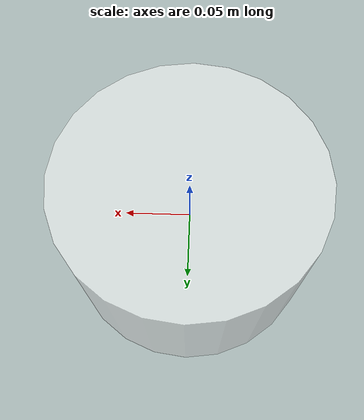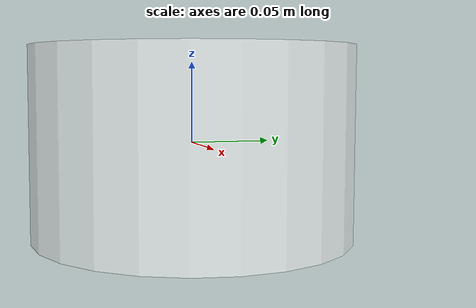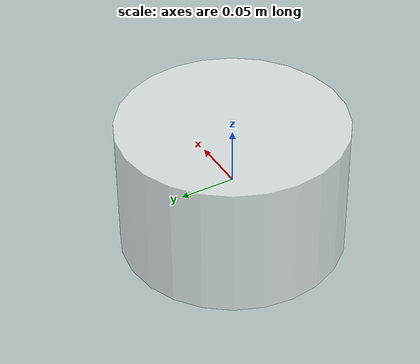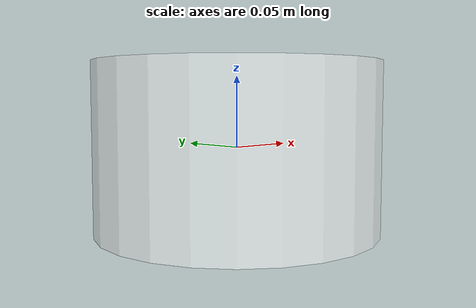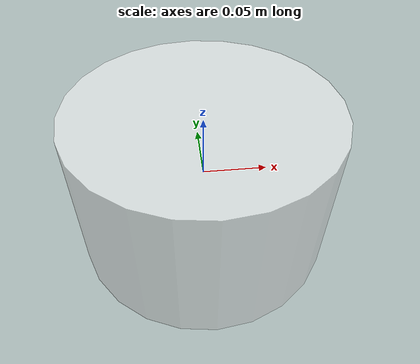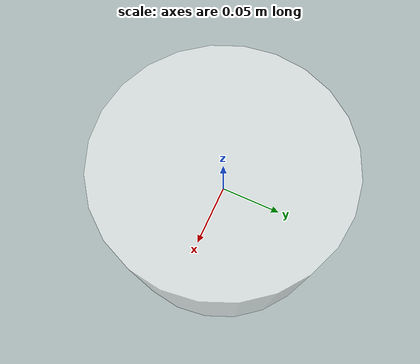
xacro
<?xml version="1.0"?>
<robot xmlns:xacro="http://www.ros.org/wiki/xacro" name="first_robot">
    <xacro:macro name="base_link" params="length radius">
        <link name="base_link">
            <visual>
                <origin xyz="0.0 0.0 0.0" rpy="0.0 0.0 0.0"/>
                <geometry>
                    <cylinder radius="${radius}" length="${length}"/>
                </geometry>
                <material name="white">
                <color rgba="1.0 1.0 1.0 0.5"/>
                </material>
            </visual>
        </link>
    </xacro:macro>

    <!-- 机器人IMU部分,惯性测量传感器 -->
    <xacro:macro name="imu_link" params="imu_name xyz">
         <link name="${imu_name}_link">
            <!--部件外观描述-->
            <visual>
                <!--沿着机器人几何中心的偏移和旋转描述-->
                <origin xyz="0.0 0.0 0.0" rpy="0.0 0.0 0.0"/>
                <!--几何形状   -->
                <geometry>
                <!-- 这里可以选择不同的几何形状，如圆柱体、立方体等 ,现在是圆柱体-->
                    <box size="0.02 0.02 0.02"/>

                </geometry>
                <!--材质颜色描述-->
                <material name="black">
                    <color rgba="0.0 0.0 0.0 0.5"/>
                </material>
            </visual>
        </link>

        <!-- 机器人的关节,IMU与身体的连接 -->
        <joint name="${imu_name}_joint" type="fixed">
            <!--连接的父链接和子链接-->
            <parent link="base_link"/>
            <child link="${imu_name}_link"/>
            <!--关节位置描述-->
            <origin xyz="${xyz}" rpy="0.0 0.0 0.0"/>
        </joint>
    </xacro:macro>

    <xacro:base_link length="0.12" radius="0.1"/>
    <xacro:imu_link imu_name="imu_up" xyz="0.0 0.0 0.03"/>
    <xacro:imu_link imu_name="imu_down" xyz="0.0 0.0 -0.03"/>
    <xacro:imu_link imu_name="imu_left" xyz="0.0 0.03 0.0"/>
    <xacro:imu_link imu_name="imu_right" xyz="0.0 -0.03 0.0"/>

</robot>
